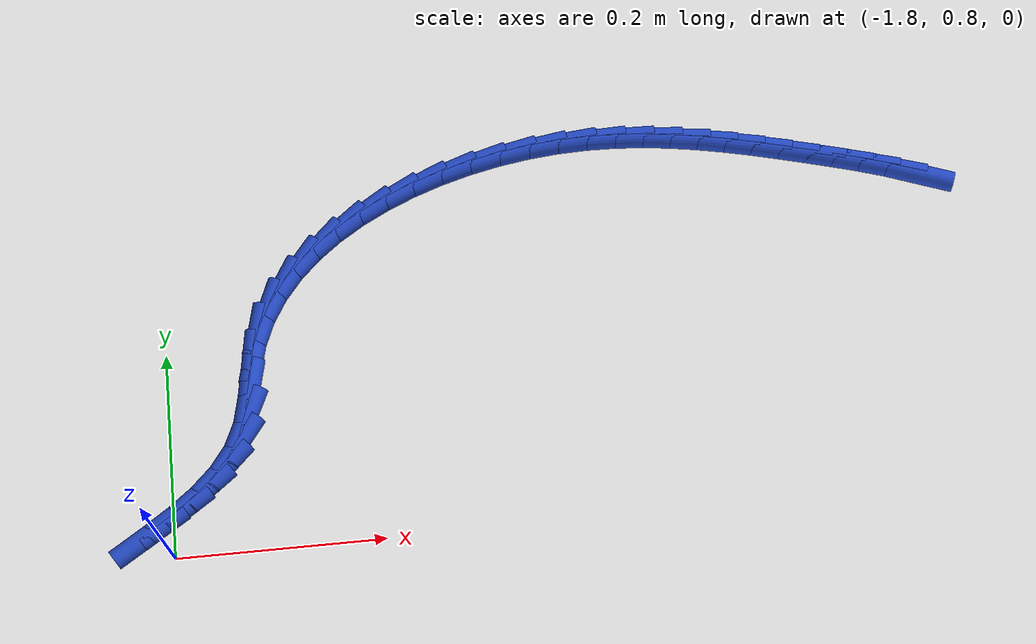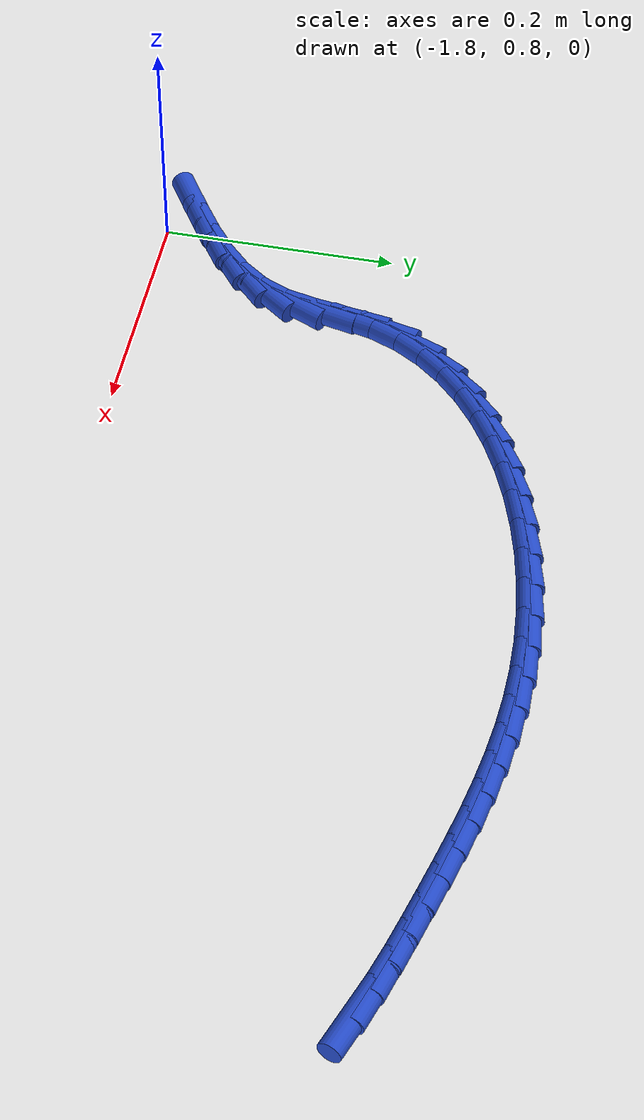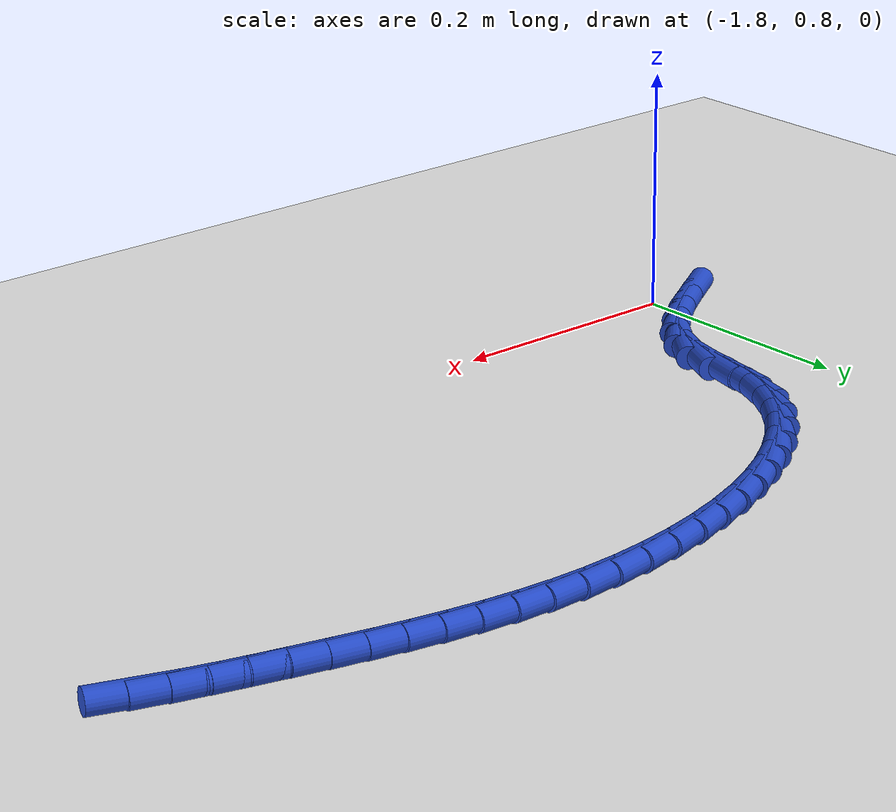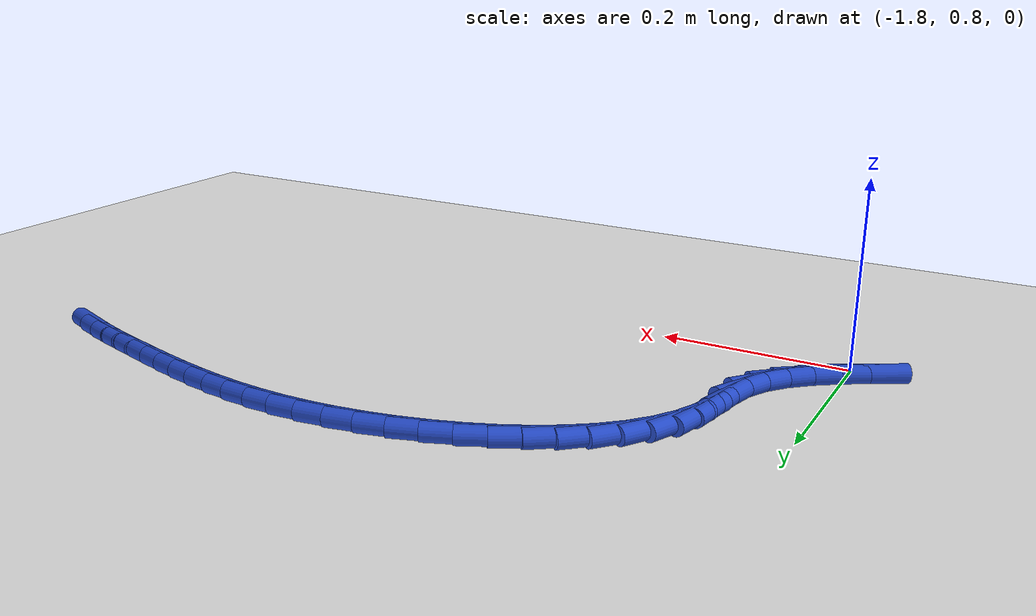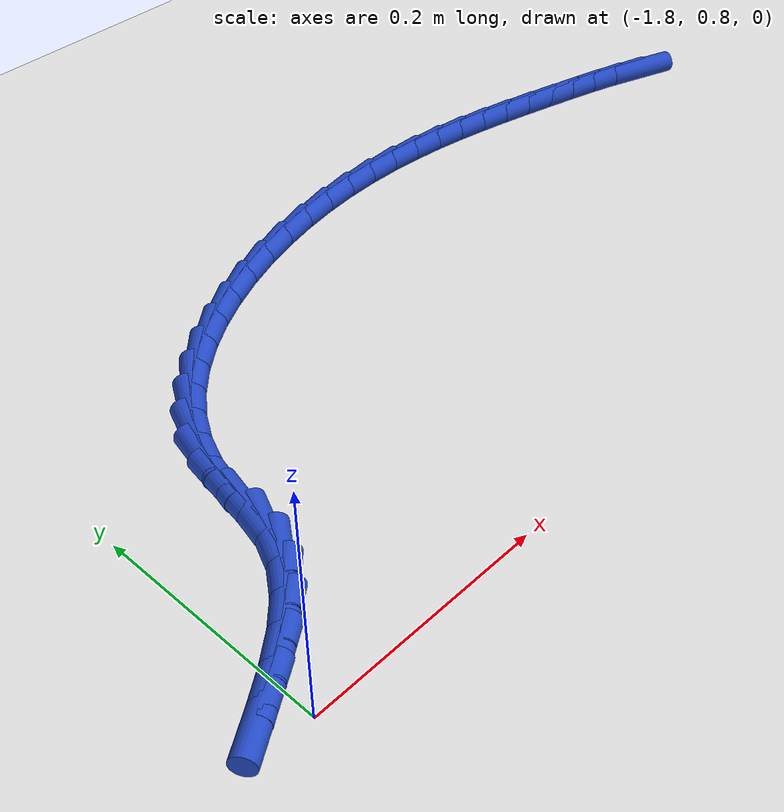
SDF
<sdf version="1.6">
 <world name="default">
  <model name="ground_plane">
   <static>1</static>
   <link name="link">
    <collision name="collision">
     <geometry><plane><normal>0 0 1</normal><size>100 100</size></plane></geometry>
     <surface><friction><ode><mu>100</mu><mu2>50</mu2></ode></friction></surface>
    </collision>
    <visual name="visual">
     <cast_shadows>0</cast_shadows>
     <geometry><plane><normal>0 0 1</normal><size>100 100</size></plane></geometry>
     <material>
      <script><uri>file://media/materials/scripts/gazebo.material</uri><name>Gazebo/WhiteGlow</name></script>
     </material>
    </visual>
   </link>
  </model>
  <model name="line">
   <link name="link_65">
    <pose>-1.0546237559554095 1.1168389341361413 0.01 0 1.57 -0.34611922300045295</pose>
    <collision name="collision">
     <geometry><cylinder><radius>0.01</radius><length>0.08</length></cylinder></geometry>
    </collision>
    <visual name="visual">
     <material>
      <script><name>Gazebo/Blue</name><uri>file://media/materials/scripts/gazebo.material</uri></script>
     </material>
     <geometry><cylinder><radius>0.01</radius><length>0.08</length></cylinder></geometry>
    </visual>
   </link>
   <link name="link_66">
    <pose>-1.0803854666226946 1.1261295555428084 0.01 0 1.57 -0.29958416836178675</pose>
    <collision name="collision">
     <geometry><cylinder><radius>0.01</radius><length>0.08</length></cylinder></geometry>
    </collision>
    <visual name="visual">
     <material>
      <script><name>Gazebo/Blue</name><uri>file://media/materials/scripts/gazebo.material</uri></script>
     </material>
     <geometry><cylinder><radius>0.01</radius><length>0.08</length></cylinder></geometry>
    </visual>
   </link>
   <link name="link_67">
    <pose>-1.1062726976843331 1.1341256212334943 0.01 0 1.57 -0.2697142135009457</pose>
    <collision name="collision">
     <geometry><cylinder><radius>0.01</radius><length>0.08</length></cylinder></geometry>
    </collision>
    <visual name="visual">
     <material>
      <script><name>Gazebo/Blue</name><uri>file://media/materials/scripts/gazebo.material</uri></script>
     </material>
     <geometry><cylinder><radius>0.01</radius><length>0.08</length></cylinder></geometry>
    </visual>
   </link>
   <link name="link_68">
    <pose>-1.1322354735120148 1.141303043173542 0.01 0 1.57 -0.25687444221815975</pose>
    <collision name="collision">
     <geometry><cylinder><radius>0.01</radius><length>0.08</length></cylinder></geometry>
    </collision>
    <visual name="visual">
     <material>
      <script><name>Gazebo/Blue</name><uri>file://media/materials/scripts/gazebo.material</uri></script>
     </material>
     <geometry><cylinder><radius>0.01</radius><length>0.08</length></cylinder></geometry>
    </visual>
   </link>
   <link name="link_69">
    <pose>-1.158225278308185 1.148129981829618 0.01 0 1.57 -0.25075168695572775</pose>
    <collision name="collision">
     <geometry><cylinder><radius>0.01</radius><length>0.08</length></cylinder></geometry>
    </collision>
    <visual name="visual">
     <material>
      <script><name>Gazebo/Blue</name><uri>file://media/materials/scripts/gazebo.material</uri></script>
     </material>
     <geometry><cylinder><radius>0.01</radius><length>0.08</length></cylinder></geometry>
    </visual>
   </link>
   <link name="link_70">
    <pose>-1.1842462406682315 1.1547950632495674 0.01 0 1.57 -0.23813123399629751</pose>
    <collision name="collision">
     <geometry><cylinder><radius>0.01</radius><length>0.08</length></cylinder></geometry>
    </collision>
    <visual name="visual">
     <material>
      <script><name>Gazebo/Blue</name><uri>file://media/materials/scripts/gazebo.material</uri></script>
     </material>
     <geometry><cylinder><radius>0.01</radius><length>0.08</length></cylinder></geometry>
    </visual>
   </link>
   <link name="link_71">
    <pose>-1.21036859095569 1.1611359222681308 0.01 0 1.57 -0.21823260993447968</pose>
    <collision name="collision">
     <geometry><cylinder><radius>0.01</radius><length>0.08</length></cylinder></geometry>
    </collision>
    <visual name="visual">
     <material>
      <script><name>Gazebo/Blue</name><uri>file://media/materials/scripts/gazebo.material</uri></script>
     </material>
     <geometry><cylinder><radius>0.01</radius><length>0.08</length></cylinder></geometry>
    </visual>
   </link>
   <link name="link_72">
    <pose>-1.2366667546351762 1.1669679183156363 0.01 0 1.57 -0.19118780041252412</pose>
    <collision name="collision">
     <geometry><cylinder><radius>0.01</radius><length>0.08</length></cylinder></geometry>
    </collision>
    <visual name="visual">
     <material>
      <script><name>Gazebo/Blue</name><uri>file://media/materials/scripts/gazebo.material</uri></script>
     </material>
     <geometry><cylinder><radius>0.01</radius><length>0.08</length></cylinder></geometry>
    </visual>
   </link>
   <link name="link_73">
    <pose>-1.2632151571713068 1.172106410822413 0.01 0 1.57 -0.15722747520985952</pose>
    <collision name="collision">
     <geometry><cylinder><radius>0.01</radius><length>0.08</length></cylinder></geometry>
    </collision>
    <visual name="visual">
     <material>
      <script><name>Gazebo/Blue</name><uri>file://media/materials/scripts/gazebo.material</uri></script>
     </material>
     <geometry><cylinder><radius>0.01</radius><length>0.08</length></cylinder></geometry>
    </visual>
   </link>
   <link name="link_74">
    <pose>-1.2900882240286977 1.1763667592187899 0.01 0 1.57 -0.11671359246227216</pose>
    <collision name="collision">
     <geometry><cylinder><radius>0.01</radius><length>0.08</length></cylinder></geometry>
    </collision>
    <visual name="visual">
     <material>
      <script><name>Gazebo/Blue</name><uri>file://media/materials/scripts/gazebo.material</uri></script>
     </material>
     <geometry><cylinder><radius>0.01</radius><length>0.08</length></cylinder></geometry>
    </visual>
   </link>
   <link name="link_75">
    <pose>-1.317360380671966 1.1795643229350958 0.01 0 1.57 -0.07017082274021988</pose>
    <collision name="collision">
     <geometry><cylinder><radius>0.01</radius><length>0.08</length></cylinder></geometry>
    </collision>
    <visual name="visual">
     <material>
      <script><name>Gazebo/Blue</name><uri>file://media/materials/scripts/gazebo.material</uri></script>
     </material>
     <geometry><cylinder><radius>0.01</radius><length>0.08</length></cylinder></geometry>
    </visual>
   </link>
   <link name="link_76">
    <pose>-1.3451060525657281 1.1815144614016593 0.01 0 1.57 -0.018308540749948806</pose>
    <collision name="collision">
     <geometry><cylinder><radius>0.01</radius><length>0.08</length></cylinder></geometry>
    </collision>
    <visual name="visual">
     <material>
      <script><name>Gazebo/Blue</name><uri>file://media/materials/scripts/gazebo.material</uri></script>
     </material>
     <geometry><cylinder><radius>0.01</radius><length>0.08</length></cylinder></geometry>
    </visual>
   </link>
   <link name="link_77">
    <pose>-1.3733996651746003 1.1820325340488096 0.01 0 1.57 0.037975735328140414</pose>
    <collision name="collision">
     <geometry><cylinder><radius>0.01</radius><length>0.08</length></cylinder></geometry>
    </collision>
    <visual name="visual">
     <material>
      <script><name>Gazebo/Blue</name><uri>file://media/materials/scripts/gazebo.material</uri></script>
     </material>
     <geometry><cylinder><radius>0.01</radius><length>0.08</length></cylinder></geometry>
    </visual>
   </link>
   <link name="link_78">
    <pose>-1.4023156439631987 1.1809339003068748 0.01 0 1.57 0.09705486571900869</pose>
    <collision name="collision">
     <geometry><cylinder><radius>0.01</radius><length>0.08</length></cylinder></geometry>
    </collision>
    <visual name="visual">
     <material>
      <script><name>Gazebo/Blue</name><uri>file://media/materials/scripts/gazebo.material</uri></script>
     </material>
     <geometry><cylinder><radius>0.01</radius><length>0.08</length></cylinder></geometry>
    </visual>
   </link>
   <link name="link_79">
    <pose>-1.4318755244223627 1.1780559279037734 0.01 0 1.57 0.1557280858080401</pose>
    <collision name="collision">
     <geometry><cylinder><radius>0.01</radius><length>0.08</length></cylinder></geometry>
    </collision>
    <visual name="visual">
     <material>
      <script><name>Gazebo/Blue</name><uri>file://media/materials/scripts/gazebo.material</uri></script>
     </material>
     <geometry><cylinder><radius>0.01</radius><length>0.08</length></cylinder></geometry>
    </visual>
   </link>
   <link name="link_80">
    <pose>-1.4618129777390816 1.1733557691468417 0.01 0 1.57 0.2144910161183498</pose>
    <collision name="collision">
     <geometry><cylinder><radius>0.01</radius><length>0.08</length></cylinder></geometry>
    </collision>
    <visual name="visual">
     <material>
      <script><name>Gazebo/Blue</name><uri>file://media/materials/scripts/gazebo.material</uri></script>
     </material>
     <geometry><cylinder><radius>0.01</radius><length>0.08</length></cylinder></geometry>
    </visual>
   </link>
   <link name="link_81">
    <pose>-1.4917642134489448 1.1668311315729694 0.01 0 1.57 0.2749828854229942</pose>
    <collision name="collision">
     <geometry><cylinder><radius>0.01</radius><length>0.08</length></cylinder></geometry>
    </collision>
    <visual name="visual">
     <material>
      <script><name>Gazebo/Blue</name><uri>file://media/materials/scripts/gazebo.material</uri></script>
     </material>
     <geometry><cylinder><radius>0.01</radius><length>0.08</length></cylinder></geometry>
    </visual>
   </link>
   <link name="link_82">
    <pose>-1.5213653634581734 1.1584797550217674 0.01 0 1.57 0.338827552833776</pose>
    <collision name="collision">
     <geometry><cylinder><radius>0.01</radius><length>0.08</length></cylinder></geometry>
    </collision>
    <visual name="visual">
     <material>
      <script><name>Gazebo/Blue</name><uri>file://media/materials/scripts/gazebo.material</uri></script>
     </material>
     <geometry><cylinder><radius>0.01</radius><length>0.08</length></cylinder></geometry>
    </visual>
   </link>
   <link name="link_83">
    <pose>-1.5502525596729908 1.148299379332849 0.01 0 1.57 0.4077236835341433</pose>
    <collision name="collision">
     <geometry><cylinder><radius>0.01</radius><length>0.08</length></cylinder></geometry>
    </collision>
    <visual name="visual">
     <material>
      <script><name>Gazebo/Blue</name><uri>file://media/materials/scripts/gazebo.material</uri></script>
     </material>
     <geometry><cylinder><radius>0.01</radius><length>0.08</length></cylinder></geometry>
    </visual>
   </link>
   <link name="link_84">
    <pose>-1.5780619339996198 1.136287744345826 0.01 0 1.57 0.483510033436454</pose>
    <collision name="collision">
     <geometry><cylinder><radius>0.01</radius><length>0.08</length></cylinder></geometry>
    </collision>
    <visual name="visual">
     <material>
      <script><name>Gazebo/Blue</name><uri>file://media/materials/scripts/gazebo.material</uri></script>
     </material>
     <geometry><cylinder><radius>0.01</radius><length>0.08</length></cylinder></geometry>
    </visual>
   </link>
   <link name="link_85">
    <pose>-1.6044296183442839 1.1224425899003108 0.01 0 1.57 0.5681909639018403</pose>
    <collision name="collision">
     <geometry><cylinder><radius>0.01</radius><length>0.08</length></cylinder></geometry>
    </collision>
    <visual name="visual">
     <material>
      <script><name>Gazebo/Blue</name><uri>file://media/materials/scripts/gazebo.material</uri></script>
     </material>
     <geometry><cylinder><radius>0.01</radius><length>0.08</length></cylinder></geometry>
    </visual>
   </link>
   <link name="link_86">
    <pose>-1.6289917446132052 1.1067616558359148 0.01 0 1.57 0.6638869533108305</pose>
    <collision name="collision">
     <geometry><cylinder><radius>0.01</radius><length>0.08</length></cylinder></geometry>
    </collision>
    <visual name="visual">
     <material>
      <script><name>Gazebo/Blue</name><uri>file://media/materials/scripts/gazebo.material</uri></script>
     </material>
     <geometry><cylinder><radius>0.01</radius><length>0.08</length></cylinder></geometry>
    </visual>
   </link>
   <link name="link_87">
    <pose>-1.6513844447126071 1.0892426819922507 0.01 0 1.57 0.7726464606578581</pose>
    <collision name="collision">
     <geometry><cylinder><radius>0.01</radius><length>0.08</length></cylinder></geometry>
    </collision>
    <visual name="visual">
     <material>
      <script><name>Gazebo/Blue</name><uri>file://media/materials/scripts/gazebo.material</uri></script>
     </material>
     <geometry><cylinder><radius>0.01</radius><length>0.08</length></cylinder></geometry>
    </visual>
   </link>
   <link name="link_88">
    <pose>-1.6712438505487122 1.0698834082089304 0.01 0 1.57 0.8960330568182401</pose>
    <collision name="collision">
     <geometry><cylinder><radius>0.01</radius><length>0.08</length></cylinder></geometry>
    </collision>
    <visual name="visual">
     <material>
      <script><name>Gazebo/Blue</name><uri>file://media/materials/scripts/gazebo.material</uri></script>
     </material>
     <geometry><cylinder><radius>0.01</radius><length>0.08</length></cylinder></geometry>
    </visual>
   </link>
   <link name="link_89">
    <pose>-1.6882060940277437 1.048681574325566 0.01 0 1.57 1.034431491653979</pose>
    <collision name="collision">
     <geometry><cylinder><radius>0.01</radius><length>0.08</length></cylinder></geometry>
    </collision>
    <visual name="visual">
     <material>
      <script><name>Gazebo/Blue</name><uri>file://media/materials/scripts/gazebo.material</uri></script>
     </material>
     <geometry><cylinder><radius>0.01</radius><length>0.08</length></cylinder></geometry>
    </visual>
   </link>
   <link name="link_90">
    <pose>-1.701907307055924 1.0256349201817698 0.01 0 1.57 1.186181979838146</pose>
    <collision name="collision">
     <geometry><cylinder><radius>0.01</radius><length>0.08</length></cylinder></geometry>
    </collision>
    <visual name="visual">
     <material>
      <script><name>Gazebo/Blue</name><uri>file://media/materials/scripts/gazebo.material</uri></script>
     </material>
     <geometry><cylinder><radius>0.01</radius><length>0.08</length></cylinder></geometry>
    </visual>
   </link>
   <link name="link_91">
    <pose>-1.711983621539476 1.0007411856171538 0.01 0 1.57 1.3407738396615851</pose>
    <collision name="collision">
     <geometry><cylinder><radius>0.01</radius><length>0.08</length></cylinder></geometry>
    </collision>
    <visual name="visual">
     <material>
      <script><name>Gazebo/Blue</name><uri>file://media/materials/scripts/gazebo.material</uri></script>
     </material>
     <geometry><cylinder><radius>0.01</radius><length>0.08</length></cylinder></geometry>
    </visual>
   </link>
   <link name="link_92">
    <pose>-1.7182292993856116 0.9740692991099906 0.01 0 1.57 1.4129572980183338</pose>
    <collision name="collision">
     <geometry><cylinder><radius>0.01</radius><length>0.08</length></cylinder></geometry>
    </collision>
    <visual name="visual">
     <material>
      <script><name>Gazebo/Blue</name><uri>file://media/materials/scripts/gazebo.material</uri></script>
     </material>
     <geometry><cylinder><radius>0.01</radius><length>0.08</length></cylinder></geometry>
    </visual>
   </link>
   <link name="link_93">
    <pose>-1.7225922076990028 0.9466577219360093 0.01 0 1.57 1.3480170407148448</pose>
    <collision name="collision">
     <geometry><cylinder><radius>0.01</radius><length>0.08</length></cylinder></geometry>
    </collision>
    <visual name="visual">
     <material>
      <script><name>Gazebo/Blue</name><uri>file://media/materials/scripts/gazebo.material</uri></script>
     </material>
     <geometry><cylinder><radius>0.01</radius><length>0.08</length></cylinder></geometry>
    </visual>
   </link>
   <link name="link_94">
    <pose>-1.7285756925975946 0.920245177387812 0.01 0 1.57 1.1471956298870263</pose>
    <collision name="collision">
     <geometry><cylinder><radius>0.01</radius><length>0.08</length></cylinder></geometry>
    </collision>
    <visual name="visual">
     <material>
      <script><name>Gazebo/Blue</name><uri>file://media/materials/scripts/gazebo.material</uri></script>
     </material>
     <geometry><cylinder><radius>0.01</radius><length>0.08</length></cylinder></geometry>
    </visual>
   </link>
   <link name="link_95">
    <pose>-1.739330439019883 0.8963933541097926 0.01 0 1.57 0.9304805400473205</pose>
    <collision name="collision">
     <geometry><cylinder><radius>0.01</radius><length>0.08</length></cylinder></geometry>
    </collision>
    <visual name="visual">
     <material>
      <script><name>Gazebo/Blue</name><uri>file://media/materials/scripts/gazebo.material</uri></script>
     </material>
     <geometry><cylinder><radius>0.01</radius><length>0.08</length></cylinder></geometry>
    </visual>
   </link>
   <link name="link_96">
    <pose>-1.7551049724805214 0.8752204721219885 0.01 0 1.57 0.7674591538207465</pose>
    <collision name="collision">
     <geometry><cylinder><radius>0.01</radius><length>0.08</length></cylinder></geometry>
    </collision>
    <visual name="visual">
     <material>
      <script><name>Gazebo/Blue</name><uri>file://media/materials/scripts/gazebo.material</uri></script>
     </material>
     <geometry><cylinder><radius>0.01</radius><length>0.08</length></cylinder></geometry>
    </visual>
   </link>
   <link name="link_97">
    <pose>-1.7748309868601775 0.8561897890975716 0.01 0 1.57 0.6568580030948372</pose>
    <collision name="collision">
     <geometry><cylinder><radius>0.01</radius><length>0.08</length></cylinder></geometry>
    </collision>
    <visual name="visual">
     <material>
      <script><name>Gazebo/Blue</name><uri>file://media/materials/scripts/gazebo.material</uri></script>
     </material>
     <geometry><cylinder><radius>0.01</radius><length>0.08</length></cylinder></geometry>
    </visual>
   </link>
   <link name="link_98">
    <pose>-1.7974336121900345 0.8387612979990612 0.01 0 1.57 0.5907416033466514</pose>
    <collision name="collision">
     <geometry><cylinder><radius>0.01</radius><length>0.08</length></cylinder></geometry>
    </collision>
    <visual name="visual">
     <material>
      <script><name>Gazebo/Blue</name><uri>file://media/materials/scripts/gazebo.material</uri></script>
     </material>
     <geometry><cylinder><radius>0.01</radius><length>0.08</length></cylinder></geometry>
    </visual>
   </link>
   <link name="link_99">
    <pose>-1.8218379785012722 0.8223949917889752 0.01 0 1.57 0.5625128006963862</pose>
    <collision name="collision">
     <geometry><cylinder><radius>0.01</radius><length>0.08</length></cylinder></geometry>
    </collision>
    <visual name="visual">
     <material>
      <script><name>Gazebo/Blue</name><uri>file://media/materials/scripts/gazebo.material</uri></script>
     </material>
     <geometry><cylinder><radius>0.01</radius><length>0.08</length></cylinder></geometry>
    </visual>
   </link>
  </model>
 </world>
</sdf>
